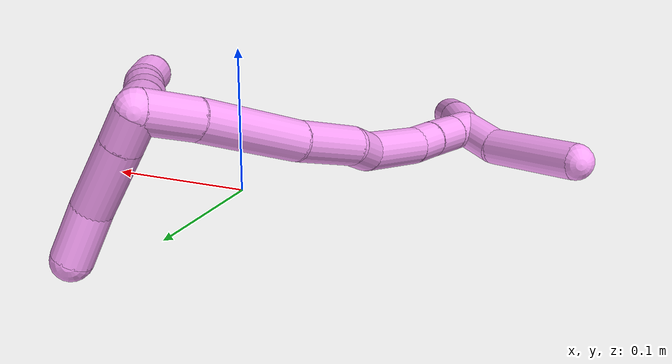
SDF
<sdf version="1.7">
 <world name="default">
  <model name="4">
   <static>0</static>
   <link name="4">
    <collision name="collision-cylinder-e_1_2_8">
     <pose>0.000362 -0.000309 -0.014521 3.12034 0.024953 1.73071</pose>
     <geometry><cylinder><radius>0.0125</radius><length>0.029057</length></cylinder></geometry>
     <surface>
      <friction><ode><mu>1.16</mu><mu2>1.16</mu2><slip1>0</slip1><slip2>0</slip2></ode></friction>
      <contact><ode><kp>1e+06</kp><kd>1</kd><max_vel>0</max_vel><min_depth>0.001</min_depth></ode></contact>
     </surface>
    </collision>
    <visual name="visual-cylinder-e_1_2_8">
     <pose>0.000362 -0.000309 -0.014521 3.12034 0.024953 1.73071</pose>
     <geometry><cylinder><radius>0.0125</radius><length>0.029057</length></cylinder></geometry>
     <material><ambient>1 0.65098 0.996078 1</ambient></material>
    </visual>
    <collision name="collision-cylinder-e_2_8_9">
     <pose>0.000874 0.001246 -0.053738 -3.0663 0.006023 -0.159574</pose>
     <geometry><cylinder><radius>0.0125</radius><length>0.049534</length></cylinder></geometry>
     <surface>
      <friction><ode><mu>1.16</mu><mu2>1.16</mu2><slip1>0</slip1><slip2>0</slip2></ode></friction>
      <contact><ode><kp>1e+06</kp><kd>1</kd><max_vel>0</max_vel><min_depth>0.001</min_depth></ode></contact>
     </surface>
    </collision>
    <visual name="visual-cylinder-e_2_8_9">
     <pose>0.000874 0.001246 -0.053738 -3.0663 0.006023 -0.159574</pose>
     <geometry><cylinder><radius>0.0125</radius><length>0.049534</length></cylinder></geometry>
     <material><ambient>1 0.65098 0.996078 1</ambient></material>
    </visual>
    <collision name="collision-cylinder-e_3_9_10">
     <pose>0.002354 0.003858 -0.089259 -3.07249 0.122022 -2.11182</pose>
     <geometry><cylinder><radius>0.0125</radius><length>0.021862</length></cylinder></geometry>
     <surface>
      <friction><ode><mu>1.16</mu><mu2>1.16</mu2><slip1>0</slip1><slip2>0</slip2></ode></friction>
      <contact><ode><kp>1e+06</kp><kd>1</kd><max_vel>0</max_vel><min_depth>0.001</min_depth></ode></contact>
     </surface>
    </collision>
    <visual name="visual-cylinder-e_3_9_10">
     <pose>0.002354 0.003858 -0.089259 -3.07249 0.122022 -2.11182</pose>
     <geometry><cylinder><radius>0.0125</radius><length>0.021862</length></cylinder></geometry>
     <material><ambient>1 0.65098 0.996078 1</ambient></material>
    </visual>
    <collision name="collision-cylinder-e_4_10_11">
     <pose>0.004439 0.005441 -0.112225 -3.07299 0.061943 -1.46884</pose>
     <geometry><cylinder><radius>0.0125</radius><length>0.02439</length></cylinder></geometry>
     <surface>
      <friction><ode><mu>1.16</mu><mu2>1.16</mu2><slip1>0</slip1><slip2>0</slip2></ode></friction>
      <contact><ode><kp>1e+06</kp><kd>1</kd><max_vel>0</max_vel><min_depth>0.001</min_depth></ode></contact>
     </surface>
    </collision>
    <visual name="visual-cylinder-e_4_10_11">
     <pose>0.004439 0.005441 -0.112225 -3.07299 0.061943 -1.46884</pose>
     <geometry><cylinder><radius>0.0125</radius><length>0.02439</length></cylinder></geometry>
     <material><ambient>1 0.65098 0.996078 1</ambient></material>
    </visual>
    <collision name="collision-cylinder-e_5_11_6">
     <pose>0.006066 0.004128 -0.136731 2.9696 0.069364 0.765265</pose>
     <geometry><cylinder><radius>0.0125</radius><length>0.025157</length></cylinder></geometry>
     <surface>
      <friction><ode><mu>1.16</mu><mu2>1.16</mu2><slip1>0</slip1><slip2>0</slip2></ode></friction>
      <contact><ode><kp>1e+06</kp><kd>1</kd><max_vel>0</max_vel><min_depth>0.001</min_depth></ode></contact>
     </surface>
    </collision>
    <visual name="visual-cylinder-e_5_11_6">
     <pose>0.006066 0.004128 -0.136731 2.9696 0.069364 0.765265</pose>
     <geometry><cylinder><radius>0.0125</radius><length>0.025157</length></cylinder></geometry>
     <material><ambient>1 0.65098 0.996078 1</ambient></material>
    </visual>
    <collision name="collision-cylinder-e_1_2_12">
     <pose>-0.005741 0.008644 -0.003769 -1.98195 -0.54689 0.80925</pose>
     <geometry><cylinder><radius>0.0125</radius><length>0.02208</length></cylinder></geometry>
     <surface>
      <friction><ode><mu>1.16</mu><mu2>1.16</mu2><slip1>0</slip1><slip2>0</slip2></ode></friction>
      <contact><ode><kp>1e+06</kp><kd>1</kd><max_vel>0</max_vel><min_depth>0.001</min_depth></ode></contact>
     </surface>
    </collision>
    <visual name="visual-cylinder-e_1_2_12">
     <pose>-0.005741 0.008644 -0.003769 -1.98195 -0.54689 0.80925</pose>
     <geometry><cylinder><radius>0.0125</radius><length>0.02208</length></cylinder></geometry>
     <material><ambient>1 0.65098 0.996078 1</ambient></material>
    </visual>
    <collision name="collision-cylinder-e_2_12_13">
     <pose>-0.022867 0.034896 -0.015347 -1.98822 -0.53378 0.79585</pose>
     <geometry><cylinder><radius>0.0125</radius><length>0.044751</length></cylinder></geometry>
     <surface>
      <friction><ode><mu>1.16</mu><mu2>1.16</mu2><slip1>0</slip1><slip2>0</slip2></ode></friction>
      <contact><ode><kp>1e+06</kp><kd>1</kd><max_vel>0</max_vel><min_depth>0.001</min_depth></ode></contact>
     </surface>
    </collision>
    <visual name="visual-cylinder-e_2_12_13">
     <pose>-0.022867 0.034896 -0.015347 -1.98822 -0.53378 0.79585</pose>
     <geometry><cylinder><radius>0.0125</radius><length>0.044751</length></cylinder></geometry>
     <material><ambient>1 0.65098 0.996078 1</ambient></material>
    </visual>
    <collision name="collision-cylinder-e_3_13_5">
     <pose>-0.043985 0.065704 -0.025625 -1.75573 -0.62729 0.744846</pose>
     <geometry><cylinder><radius>0.0125</radius><length>0.03317</length></cylinder></geometry>
     <surface>
      <friction><ode><mu>1.16</mu><mu2>1.16</mu2><slip1>0</slip1><slip2>0</slip2></ode></friction>
      <contact><ode><kp>1e+06</kp><kd>1</kd><max_vel>0</max_vel><min_depth>0.001</min_depth></ode></contact>
     </surface>
    </collision>
    <visual name="visual-cylinder-e_3_13_5">
     <pose>-0.043985 0.065704 -0.025625 -1.75573 -0.62729 0.744846</pose>
     <geometry><cylinder><radius>0.0125</radius><length>0.03317</length></cylinder></geometry>
     <material><ambient>1 0.65098 0.996078 1</ambient></material>
    </visual>
    <collision name="collision-cylinder-e_1_2_14">
     <pose>-0.010773 -0.01079 -0.009523 2.2939 -0.642571 -1.27108</pose>
     <geometry><cylinder><radius>0.0125</radius><length>0.035954</length></cylinder></geometry>
     <surface>
      <friction><ode><mu>1.16</mu><mu2>1.16</mu2><slip1>0</slip1><slip2>0</slip2></ode></friction>
      <contact><ode><kp>1e+06</kp><kd>1</kd><max_vel>0</max_vel><min_depth>0.001</min_depth></ode></contact>
     </surface>
    </collision>
    <visual name="visual-cylinder-e_1_2_14">
     <pose>-0.010773 -0.01079 -0.009523 2.2939 -0.642571 -1.27108</pose>
     <geometry><cylinder><radius>0.0125</radius><length>0.035954</length></cylinder></geometry>
     <material><ambient>1 0.65098 0.996078 1</ambient></material>
    </visual>
    <collision name="collision-cylinder-e_2_14_15">
     <pose>-0.04415 -0.041049 -0.039579 2.38279 -0.674059 -1.44197</pose>
     <geometry><cylinder><radius>0.0125</radius><length>0.072432</length></cylinder></geometry>
     <surface>
      <friction><ode><mu>1.16</mu><mu2>1.16</mu2><slip1>0</slip1><slip2>0</slip2></ode></friction>
      <contact><ode><kp>1e+06</kp><kd>1</kd><max_vel>0</max_vel><min_depth>0.001</min_depth></ode></contact>
     </surface>
    </collision>
    <visual name="visual-cylinder-e_2_14_15">
     <pose>-0.04415 -0.041049 -0.039579 2.38279 -0.674059 -1.44197</pose>
     <geometry><cylinder><radius>0.0125</radius><length>0.072432</length></cylinder></geometry>
     <material><ambient>1 0.65098 0.996078 1</ambient></material>
    </visual>
    <collision name="collision-cylinder-e_3_15_16">
     <pose>-0.079457 -0.073481 -0.075925 2.45493 -0.55587 -1.34718</pose>
     <geometry><cylinder><radius>0.0125</radius><length>0.048144</length></cylinder></geometry>
     <surface>
      <friction><ode><mu>1.16</mu><mu2>1.16</mu2><slip1>0</slip1><slip2>0</slip2></ode></friction>
      <contact><ode><kp>1e+06</kp><kd>1</kd><max_vel>0</max_vel><min_depth>0.001</min_depth></ode></contact>
     </surface>
    </collision>
    <visual name="visual-cylinder-e_3_15_16">
     <pose>-0.079457 -0.073481 -0.075925 2.45493 -0.55587 -1.34718</pose>
     <geometry><cylinder><radius>0.0125</radius><length>0.048144</length></cylinder></geometry>
     <material><ambient>1 0.65098 0.996078 1</ambient></material>
    </visual>
    <collision name="collision-cylinder-e_4_16_17">
     <pose>-0.098207 -0.089632 -0.10086 2.80533 -0.559232 -2.07385</pose>
     <geometry><cylinder><radius>0.0125</radius><length>0.0228</length></cylinder></geometry>
     <surface>
      <friction><ode><mu>1.16</mu><mu2>1.16</mu2><slip1>0</slip1><slip2>0</slip2></ode></friction>
      <contact><ode><kp>1e+06</kp><kd>1</kd><max_vel>0</max_vel><min_depth>0.001</min_depth></ode></contact>
     </surface>
    </collision>
    <visual name="visual-cylinder-e_4_16_17">
     <pose>-0.098207 -0.089632 -0.10086 2.80533 -0.559232 -2.07385</pose>
     <geometry><cylinder><radius>0.0125</radius><length>0.0228</length></cylinder></geometry>
     <material><ambient>1 0.65098 0.996078 1</ambient></material>
    </visual>
    <collision name="collision-cylinder-e_5_17_18">
     <pose>-0.114618 -0.10785 -0.128084 2.44866 -0.414865 -1.05557</pose>
     <geometry><cylinder><radius>0.0125</radius><length>0.051419</length></cylinder></geometry>
     <surface>
      <friction><ode><mu>1.16</mu><mu2>1.16</mu2><slip1>0</slip1><slip2>0</slip2></ode></friction>
      <contact><ode><kp>1e+06</kp><kd>1</kd><max_vel>0</max_vel><min_depth>0.001</min_depth></ode></contact>
     </surface>
    </collision>
    <visual name="visual-cylinder-e_5_17_18">
     <pose>-0.114618 -0.10785 -0.128084 2.44866 -0.414865 -1.05557</pose>
     <geometry><cylinder><radius>0.0125</radius><length>0.051419</length></cylinder></geometry>
     <material><ambient>1 0.65098 0.996078 1</ambient></material>
    </visual>
    <collision name="collision-cylinder-e_6_18_19">
     <pose>-0.127895 -0.129574 -0.153199 2.37945 -0.292122 -0.703775</pose>
     <geometry><cylinder><radius>0.0125</radius><length>0.020245</length></cylinder></geometry>
     <surface>
      <friction><ode><mu>1.16</mu><mu2>1.16</mu2><slip1>0</slip1><slip2>0</slip2></ode></friction>
      <contact><ode><kp>1e+06</kp><kd>1</kd><max_vel>0</max_vel><min_depth>0.001</min_depth></ode></contact>
     </surface>
    </collision>
    <visual name="visual-cylinder-e_6_18_19">
     <pose>-0.127895 -0.129574 -0.153199 2.37945 -0.292122 -0.703775</pose>
     <geometry><cylinder><radius>0.0125</radius><length>0.020245</length></cylinder></geometry>
     <material><ambient>1 0.65098 0.996078 1</ambient></material>
    </visual>
    <collision name="collision-cylinder-e_7_19_20">
     <pose>-0.135075 -0.144628 -0.170486 2.45856 -0.311457 -0.831856</pose>
     <geometry><cylinder><radius>0.0125</radius><length>0.027834</length></cylinder></geometry>
     <surface>
      <friction><ode><mu>1.16</mu><mu2>1.16</mu2><slip1>0</slip1><slip2>0</slip2></ode></friction>
      <contact><ode><kp>1e+06</kp><kd>1</kd><max_vel>0</max_vel><min_depth>0.001</min_depth></ode></contact>
     </surface>
    </collision>
    <visual name="visual-cylinder-e_7_19_20">
     <pose>-0.135075 -0.144628 -0.170486 2.45856 -0.311457 -0.831856</pose>
     <geometry><cylinder><radius>0.0125</radius><length>0.027834</length></cylinder></geometry>
     <material><ambient>1 0.65098 0.996078 1</ambient></material>
    </visual>
    <collision name="collision-cylinder-e_8_20_1">
     <pose>-0.142542 -0.159253 -0.188674 2.47197 -0.307232 -0.837456</pose>
     <geometry><cylinder><radius>0.0125</radius><length>0.021173</length></cylinder></geometry>
     <surface>
      <friction><ode><mu>1.16</mu><mu2>1.16</mu2><slip1>0</slip1><slip2>0</slip2></ode></friction>
      <contact><ode><kp>1e+06</kp><kd>1</kd><max_vel>0</max_vel><min_depth>0.001</min_depth></ode></contact>
     </surface>
    </collision>
    <visual name="visual-cylinder-e_8_20_1">
     <pose>-0.142542 -0.159253 -0.188674 2.47197 -0.307232 -0.837456</pose>
     <geometry><cylinder><radius>0.0125</radius><length>0.021173</length></cylinder></geometry>
     <material><ambient>1 0.65098 0.996078 1</ambient></material>
    </visual>
    <collision name="collision-cylinder-e_1_1_21">
     <pose>-0.14438 -0.166542 -0.212438 3.07694 0.085598 1.84803</pose>
     <geometry><cylinder><radius>0.0125</radius><length>0.031887</length></cylinder></geometry>
     <surface>
      <friction><ode><mu>1.16</mu><mu2>1.16</mu2><slip1>0</slip1><slip2>0</slip2></ode></friction>
      <contact><ode><kp>1e+06</kp><kd>1</kd><max_vel>0</max_vel><min_depth>0.001</min_depth></ode></contact>
     </surface>
    </collision>
    <visual name="visual-cylinder-e_1_1_21">
     <pose>-0.14438 -0.166542 -0.212438 3.07694 0.085598 1.84803</pose>
     <geometry><cylinder><radius>0.0125</radius><length>0.031887</length></cylinder></geometry>
     <material><ambient>1 0.65098 0.996078 1</ambient></material>
    </visual>
    <collision name="collision-cylinder-e_2_21_22">
     <pose>-0.143176 -0.167353 -0.240045 -3.12325 -0.013484 1.26763</pose>
     <geometry><cylinder><radius>0.0125</radius><length>0.023517</length></cylinder></geometry>
     <surface>
      <friction><ode><mu>1.16</mu><mu2>1.16</mu2><slip1>0</slip1><slip2>0</slip2></ode></friction>
      <contact><ode><kp>1e+06</kp><kd>1</kd><max_vel>0</max_vel><min_depth>0.001</min_depth></ode></contact>
     </surface>
    </collision>
    <visual name="visual-cylinder-e_2_21_22">
     <pose>-0.143176 -0.167353 -0.240045 -3.12325 -0.013484 1.26763</pose>
     <geometry><cylinder><radius>0.0125</radius><length>0.023517</length></cylinder></geometry>
     <material><ambient>1 0.65098 0.996078 1</ambient></material>
    </visual>
    <collision name="collision-cylinder-e_3_22_23">
     <pose>-0.146308 -0.167925 -0.261904 3.06376 -0.285446 -2.61239</pose>
     <geometry><cylinder><radius>0.0125</radius><length>0.021123</length></cylinder></geometry>
     <surface>
      <friction><ode><mu>1.16</mu><mu2>1.16</mu2><slip1>0</slip1><slip2>0</slip2></ode></friction>
      <contact><ode><kp>1e+06</kp><kd>1</kd><max_vel>0</max_vel><min_depth>0.001</min_depth></ode></contact>
     </surface>
    </collision>
    <visual name="visual-cylinder-e_3_22_23">
     <pose>-0.146308 -0.167925 -0.261904 3.06376 -0.285446 -2.61239</pose>
     <geometry><cylinder><radius>0.0125</radius><length>0.021123</length></cylinder></geometry>
     <material><ambient>1 0.65098 0.996078 1</ambient></material>
    </visual>
    <collision name="collision-cylinder-e_4_23_4">
     <pose>-0.153286 -0.170885 -0.282824 2.94345 -0.348076 -2.11249</pose>
     <geometry><cylinder><radius>0.0125</radius><length>0.023473</length></cylinder></geometry>
     <surface>
      <friction><ode><mu>1.16</mu><mu2>1.16</mu2><slip1>0</slip1><slip2>0</slip2></ode></friction>
      <contact><ode><kp>1e+06</kp><kd>1</kd><max_vel>0</max_vel><min_depth>0.001</min_depth></ode></contact>
     </surface>
    </collision>
    <visual name="visual-cylinder-e_4_23_4">
     <pose>-0.153286 -0.170885 -0.282824 2.94345 -0.348076 -2.11249</pose>
     <geometry><cylinder><radius>0.0125</radius><length>0.023473</length></cylinder></geometry>
     <material><ambient>1 0.65098 0.996078 1</ambient></material>
    </visual>
    <collision name="collision-cylinder-e_1_1_24">
     <pose>-0.153718 -0.169881 -0.183565 0.323471 -0.526078 -0.087815</pose>
     <geometry><cylinder><radius>0.0125</radius><length>0.031761</length></cylinder></geometry>
     <surface>
      <friction><ode><mu>1.16</mu><mu2>1.16</mu2><slip1>0</slip1><slip2>0</slip2></ode></friction>
      <contact><ode><kp>1e+06</kp><kd>1</kd><max_vel>0</max_vel><min_depth>0.001</min_depth></ode></contact>
     </surface>
    </collision>
    <visual name="visual-cylinder-e_1_1_24">
     <pose>-0.153718 -0.169881 -0.183565 0.323471 -0.526078 -0.087815</pose>
     <geometry><cylinder><radius>0.0125</radius><length>0.031761</length></cylinder></geometry>
     <material><ambient>1 0.65098 0.996078 1</ambient></material>
    </visual>
    <collision name="collision-cylinder-e_2_24_3">
     <pose>-0.173046 -0.191679 -0.143501 0.572595 -0.33925 -0.100754</pose>
     <geometry><cylinder><radius>0.0125</radius><length>0.068239</length></cylinder></geometry>
     <surface>
      <friction><ode><mu>1.16</mu><mu2>1.16</mu2><slip1>0</slip1><slip2>0</slip2></ode></friction>
      <contact><ode><kp>1e+06</kp><kd>1</kd><max_vel>0</max_vel><min_depth>0.001</min_depth></ode></contact>
     </surface>
    </collision>
    <visual name="visual-cylinder-e_2_24_3">
     <pose>-0.173046 -0.191679 -0.143501 0.572595 -0.33925 -0.100754</pose>
     <geometry><cylinder><radius>0.0125</radius><length>0.068239</length></cylinder></geometry>
     <material><ambient>1 0.65098 0.996078 1</ambient></material>
    </visual>
    <collision name="collision-sphere-3">
     <pose>-0.184401 -0.209112 -0.116458 0 -0 0</pose>
     <geometry><sphere><radius>0.0125</radius></sphere></geometry>
     <surface>
      <friction><ode><mu>1.16</mu><mu2>1.16</mu2><slip1>0</slip1><slip2>0</slip2></ode></friction>
      <contact><ode><kp>1e+06</kp><kd>1</kd><max_vel>0</max_vel><min_depth>0.001</min_depth></ode></contact>
     </surface>
    </collision>
    <visual name="visual-sphere-3">
     <pose>-0.184401 -0.209112 -0.116458 0 -0 0</pose>
     <geometry><sphere><radius>0.0125</radius></sphere></geometry>
     <material><ambient>1 0.65098 0.996078 1</ambient></material>
    </visual>
    <collision name="collision-sphere-24">
     <pose>-0.161692 -0.174246 -0.170544 0 -0 0</pose>
     <geometry><sphere><radius>0.0125</radius></sphere></geometry>
     <surface>
      <friction><ode><mu>1.16</mu><mu2>1.16</mu2><slip1>0</slip1><slip2>0</slip2></ode></friction>
      <contact><ode><kp>1e+06</kp><kd>1</kd><max_vel>0</max_vel><min_depth>0.001</min_depth></ode></contact>
     </surface>
    </collision>
    <visual name="visual-sphere-24">
     <pose>-0.161692 -0.174246 -0.170544 0 -0 0</pose>
     <geometry><sphere><radius>0.0125</radius></sphere></geometry>
     <material><ambient>1 0.65098 0.996078 1</ambient></material>
    </visual>
    <collision name="collision-sphere-4">
     <pose>-0.157289 -0.173057 -0.293641 0 -0 0</pose>
     <geometry><sphere><radius>0.0125</radius></sphere></geometry>
     <surface>
      <friction><ode><mu>1.16</mu><mu2>1.16</mu2><slip1>0</slip1><slip2>0</slip2></ode></friction>
      <contact><ode><kp>1e+06</kp><kd>1</kd><max_vel>0</max_vel><min_depth>0.001</min_depth></ode></contact>
     </surface>
    </collision>
    <visual name="visual-sphere-4">
     <pose>-0.157289 -0.173057 -0.293641 0 -0 0</pose>
     <geometry><sphere><radius>0.0125</radius></sphere></geometry>
     <material><ambient>1 0.65098 0.996078 1</ambient></material>
    </visual>
    <collision name="collision-sphere-23">
     <pose>-0.149282 -0.168713 -0.272007 0 -0 0</pose>
     <geometry><sphere><radius>0.0125</radius></sphere></geometry>
     <surface>
      <friction><ode><mu>1.16</mu><mu2>1.16</mu2><slip1>0</slip1><slip2>0</slip2></ode></friction>
      <contact><ode><kp>1e+06</kp><kd>1</kd><max_vel>0</max_vel><min_depth>0.001</min_depth></ode></contact>
     </surface>
    </collision>
    <visual name="visual-sphere-23">
     <pose>-0.149282 -0.168713 -0.272007 0 -0 0</pose>
     <geometry><sphere><radius>0.0125</radius></sphere></geometry>
     <material><ambient>1 0.65098 0.996078 1</ambient></material>
    </visual>
    <collision name="collision-sphere-22">
     <pose>-0.143334 -0.167137 -0.2518 0 -0 0</pose>
     <geometry><sphere><radius>0.0125</radius></sphere></geometry>
     <surface>
      <friction><ode><mu>1.16</mu><mu2>1.16</mu2><slip1>0</slip1><slip2>0</slip2></ode></friction>
      <contact><ode><kp>1e+06</kp><kd>1</kd><max_vel>0</max_vel><min_depth>0.001</min_depth></ode></contact>
     </surface>
    </collision>
    <visual name="visual-sphere-22">
     <pose>-0.143334 -0.167137 -0.2518 0 -0 0</pose>
     <geometry><sphere><radius>0.0125</radius></sphere></geometry>
     <material><ambient>1 0.65098 0.996078 1</ambient></material>
    </visual>
    <collision name="collision-sphere-21">
     <pose>-0.143017 -0.167569 -0.22829 0 -0 0</pose>
     <geometry><sphere><radius>0.0125</radius></sphere></geometry>
     <surface>
      <friction><ode><mu>1.16</mu><mu2>1.16</mu2><slip1>0</slip1><slip2>0</slip2></ode></friction>
      <contact><ode><kp>1e+06</kp><kd>1</kd><max_vel>0</max_vel><min_depth>0.001</min_depth></ode></contact>
     </surface>
    </collision>
    <visual name="visual-sphere-21">
     <pose>-0.143017 -0.167569 -0.22829 0 -0 0</pose>
     <geometry><sphere><radius>0.0125</radius></sphere></geometry>
     <material><ambient>1 0.65098 0.996078 1</ambient></material>
    </visual>
    <collision name="collision-sphere-1">
     <pose>-0.145743 -0.165516 -0.196586 0 -0 0</pose>
     <geometry><sphere><radius>0.0125</radius></sphere></geometry>
     <surface>
      <friction><ode><mu>1.16</mu><mu2>1.16</mu2><slip1>0</slip1><slip2>0</slip2></ode></friction>
      <contact><ode><kp>1e+06</kp><kd>1</kd><max_vel>0</max_vel><min_depth>0.001</min_depth></ode></contact>
     </surface>
    </collision>
    <visual name="visual-sphere-1">
     <pose>-0.145743 -0.165516 -0.196586 0 -0 0</pose>
     <geometry><sphere><radius>0.0125</radius></sphere></geometry>
     <material><ambient>1 0.65098 0.996078 1</ambient></material>
    </visual>
    <collision name="collision-sphere-6">
     <pose>0.006938 0.00198 -0.149094 0 -0 0</pose>
     <geometry><sphere><radius>0.0125</radius></sphere></geometry>
     <surface>
      <friction><ode><mu>1.16</mu><mu2>1.16</mu2><slip1>0</slip1><slip2>0</slip2></ode></friction>
      <contact><ode><kp>1e+06</kp><kd>1</kd><max_vel>0</max_vel><min_depth>0.001</min_depth></ode></contact>
     </surface>
    </collision>
    <visual name="visual-sphere-6">
     <pose>0.006938 0.00198 -0.149094 0 -0 0</pose>
     <geometry><sphere><radius>0.0125</radius></sphere></geometry>
     <material><ambient>1 0.65098 0.996078 1</ambient></material>
    </visual>
    <collision name="collision-sphere-11">
     <pose>0.005194 0.006275 -0.124368 0 -0 0</pose>
     <geometry><sphere><radius>0.0125</radius></sphere></geometry>
     <surface>
      <friction><ode><mu>1.16</mu><mu2>1.16</mu2><slip1>0</slip1><slip2>0</slip2></ode></friction>
      <contact><ode><kp>1e+06</kp><kd>1</kd><max_vel>0</max_vel><min_depth>0.001</min_depth></ode></contact>
     </surface>
    </collision>
    <visual name="visual-sphere-11">
     <pose>0.005194 0.006275 -0.124368 0 -0 0</pose>
     <geometry><sphere><radius>0.0125</radius></sphere></geometry>
     <material><ambient>1 0.65098 0.996078 1</ambient></material>
    </visual>
    <collision name="collision-sphere-10">
     <pose>0.003684 0.004607 -0.100083 0 -0 0</pose>
     <geometry><sphere><radius>0.0125</radius></sphere></geometry>
     <surface>
      <friction><ode><mu>1.16</mu><mu2>1.16</mu2><slip1>0</slip1><slip2>0</slip2></ode></friction>
      <contact><ode><kp>1e+06</kp><kd>1</kd><max_vel>0</max_vel><min_depth>0.001</min_depth></ode></contact>
     </surface>
    </collision>
    <visual name="visual-sphere-10">
     <pose>0.003684 0.004607 -0.100083 0 -0 0</pose>
     <geometry><sphere><radius>0.0125</radius></sphere></geometry>
     <material><ambient>1 0.65098 0.996078 1</ambient></material>
    </visual>
    <collision name="collision-sphere-9">
     <pose>0.001023 0.003109 -0.078435 0 -0 0</pose>
     <geometry><sphere><radius>0.0125</radius></sphere></geometry>
     <surface>
      <friction><ode><mu>1.16</mu><mu2>1.16</mu2><slip1>0</slip1><slip2>0</slip2></ode></friction>
      <contact><ode><kp>1e+06</kp><kd>1</kd><max_vel>0</max_vel><min_depth>0.001</min_depth></ode></contact>
     </surface>
    </collision>
    <visual name="visual-sphere-9">
     <pose>0.001023 0.003109 -0.078435 0 -0 0</pose>
     <geometry><sphere><radius>0.0125</radius></sphere></geometry>
     <material><ambient>1 0.65098 0.996078 1</ambient></material>
    </visual>
    <collision name="collision-sphere-2">
     <geometry><sphere><radius>0.0125</radius></sphere></geometry>
     <surface>
      <friction><ode><mu>1.16</mu><mu2>1.16</mu2><slip1>0</slip1><slip2>0</slip2></ode></friction>
      <contact><ode><kp>1e+06</kp><kd>1</kd><max_vel>0</max_vel><min_depth>0.001</min_depth></ode></contact>
     </surface>
    </collision>
    <visual name="visual-sphere-2">
     <geometry><sphere><radius>0.0125</radius></sphere></geometry>
     <material><ambient>1 0.65098 0.996078 1</ambient></material>
    </visual>
    <collision name="collision-sphere-19">
     <pose>-0.130811 -0.136267 -0.160211 0 -0 0</pose>
     <geometry><sphere><radius>0.0125</radius></sphere></geometry>
     <surface>
      <friction><ode><mu>1.16</mu><mu2>1.16</mu2><slip1>0</slip1><slip2>0</slip2></ode></friction>
      <contact><ode><kp>1e+06</kp><kd>1</kd><max_vel>0</max_vel><min_depth>0.001</min_depth></ode></contact>
     </surface>
    </collision>
    <visual name="visual-sphere-19">
     <pose>-0.130811 -0.136267 -0.160211 0 -0 0</pose>
     <geometry><sphere><radius>0.0125</radius></sphere></geometry>
     <material><ambient>1 0.65098 0.996078 1</ambient></material>
    </visual>
    <collision name="collision-sphere-8">
     <pose>0.000725 -0.000617 -0.029041 0 -0 0</pose>
     <geometry><sphere><radius>0.0125</radius></sphere></geometry>
     <surface>
      <friction><ode><mu>1.16</mu><mu2>1.16</mu2><slip1>0</slip1><slip2>0</slip2></ode></friction>
      <contact><ode><kp>1e+06</kp><kd>1</kd><max_vel>0</max_vel><min_depth>0.001</min_depth></ode></contact>
     </surface>
    </collision>
    <visual name="visual-sphere-8">
     <pose>0.000725 -0.000617 -0.029041 0 -0 0</pose>
     <geometry><sphere><radius>0.0125</radius></sphere></geometry>
     <material><ambient>1 0.65098 0.996078 1</ambient></material>
    </visual>
    <collision name="collision-sphere-12">
     <pose>-0.011482 0.017288 -0.007538 0 -0 0</pose>
     <geometry><sphere><radius>0.0125</radius></sphere></geometry>
     <surface>
      <friction><ode><mu>1.16</mu><mu2>1.16</mu2><slip1>0</slip1><slip2>0</slip2></ode></friction>
      <contact><ode><kp>1e+06</kp><kd>1</kd><max_vel>0</max_vel><min_depth>0.001</min_depth></ode></contact>
     </surface>
    </collision>
    <visual name="visual-sphere-12">
     <pose>-0.011482 0.017288 -0.007538 0 -0 0</pose>
     <geometry><sphere><radius>0.0125</radius></sphere></geometry>
     <material><ambient>1 0.65098 0.996078 1</ambient></material>
    </visual>
    <collision name="collision-sphere-13">
     <pose>-0.034251 0.052505 -0.023156 0 -0 0</pose>
     <geometry><sphere><radius>0.0125</radius></sphere></geometry>
     <surface>
      <friction><ode><mu>1.16</mu><mu2>1.16</mu2><slip1>0</slip1><slip2>0</slip2></ode></friction>
      <contact><ode><kp>1e+06</kp><kd>1</kd><max_vel>0</max_vel><min_depth>0.001</min_depth></ode></contact>
     </surface>
    </collision>
    <visual name="visual-sphere-13">
     <pose>-0.034251 0.052505 -0.023156 0 -0 0</pose>
     <geometry><sphere><radius>0.0125</radius></sphere></geometry>
     <material><ambient>1 0.65098 0.996078 1</ambient></material>
    </visual>
    <collision name="collision-sphere-5">
     <pose>-0.05372 0.078902 -0.028094 0 -0 0</pose>
     <geometry><sphere><radius>0.0125</radius></sphere></geometry>
     <surface>
      <friction><ode><mu>1.16</mu><mu2>1.16</mu2><slip1>0</slip1><slip2>0</slip2></ode></friction>
      <contact><ode><kp>1e+06</kp><kd>1</kd><max_vel>0</max_vel><min_depth>0.001</min_depth></ode></contact>
     </surface>
    </collision>
    <visual name="visual-sphere-5">
     <pose>-0.05372 0.078902 -0.028094 0 -0 0</pose>
     <geometry><sphere><radius>0.0125</radius></sphere></geometry>
     <material><ambient>1 0.65098 0.996078 1</ambient></material>
    </visual>
    <collision name="collision-sphere-14">
     <pose>-0.021545 -0.02158 -0.019046 0 -0 0</pose>
     <geometry><sphere><radius>0.0125</radius></sphere></geometry>
     <surface>
      <friction><ode><mu>1.16</mu><mu2>1.16</mu2><slip1>0</slip1><slip2>0</slip2></ode></friction>
      <contact><ode><kp>1e+06</kp><kd>1</kd><max_vel>0</max_vel><min_depth>0.001</min_depth></ode></contact>
     </surface>
    </collision>
    <visual name="visual-sphere-14">
     <pose>-0.021545 -0.02158 -0.019046 0 -0 0</pose>
     <geometry><sphere><radius>0.0125</radius></sphere></geometry>
     <material><ambient>1 0.65098 0.996078 1</ambient></material>
    </visual>
    <collision name="collision-sphere-15">
     <pose>-0.066754 -0.060517 -0.060111 0 -0 0</pose>
     <geometry><sphere><radius>0.0125</radius></sphere></geometry>
     <surface>
      <friction><ode><mu>1.16</mu><mu2>1.16</mu2><slip1>0</slip1><slip2>0</slip2></ode></friction>
      <contact><ode><kp>1e+06</kp><kd>1</kd><max_vel>0</max_vel><min_depth>0.001</min_depth></ode></contact>
     </surface>
    </collision>
    <visual name="visual-sphere-15">
     <pose>-0.066754 -0.060517 -0.060111 0 -0 0</pose>
     <geometry><sphere><radius>0.0125</radius></sphere></geometry>
     <material><ambient>1 0.65098 0.996078 1</ambient></material>
    </visual>
    <collision name="collision-sphere-16">
     <pose>-0.092159 -0.086444 -0.091738 0 -0 0</pose>
     <geometry><sphere><radius>0.0125</radius></sphere></geometry>
     <surface>
      <friction><ode><mu>1.16</mu><mu2>1.16</mu2><slip1>0</slip1><slip2>0</slip2></ode></friction>
      <contact><ode><kp>1e+06</kp><kd>1</kd><max_vel>0</max_vel><min_depth>0.001</min_depth></ode></contact>
     </surface>
    </collision>
    <visual name="visual-sphere-16">
     <pose>-0.092159 -0.086444 -0.091738 0 -0 0</pose>
     <geometry><sphere><radius>0.0125</radius></sphere></geometry>
     <material><ambient>1 0.65098 0.996078 1</ambient></material>
    </visual>
    <collision name="collision-sphere-17">
     <pose>-0.104255 -0.092821 -0.109982 0 -0 0</pose>
     <geometry><sphere><radius>0.0125</radius></sphere></geometry>
     <surface>
      <friction><ode><mu>1.16</mu><mu2>1.16</mu2><slip1>0</slip1><slip2>0</slip2></ode></friction>
      <contact><ode><kp>1e+06</kp><kd>1</kd><max_vel>0</max_vel><min_depth>0.001</min_depth></ode></contact>
     </surface>
    </collision>
    <visual name="visual-sphere-17">
     <pose>-0.104255 -0.092821 -0.109982 0 -0 0</pose>
     <geometry><sphere><radius>0.0125</radius></sphere></geometry>
     <material><ambient>1 0.65098 0.996078 1</ambient></material>
    </visual>
    <collision name="collision-sphere-18">
     <pose>-0.12498 -0.12288 -0.146187 0 -0 0</pose>
     <geometry><sphere><radius>0.0125</radius></sphere></geometry>
     <surface>
      <friction><ode><mu>1.16</mu><mu2>1.16</mu2><slip1>0</slip1><slip2>0</slip2></ode></friction>
      <contact><ode><kp>1e+06</kp><kd>1</kd><max_vel>0</max_vel><min_depth>0.001</min_depth></ode></contact>
     </surface>
    </collision>
    <visual name="visual-sphere-18">
     <pose>-0.12498 -0.12288 -0.146187 0 -0 0</pose>
     <geometry><sphere><radius>0.0125</radius></sphere></geometry>
     <material><ambient>1 0.65098 0.996078 1</ambient></material>
    </visual>
    <collision name="collision-sphere-20">
     <pose>-0.13934 -0.152989 -0.180762 0 -0 0</pose>
     <geometry><sphere><radius>0.0125</radius></sphere></geometry>
     <surface>
      <friction><ode><mu>1.16</mu><mu2>1.16</mu2><slip1>0</slip1><slip2>0</slip2></ode></friction>
      <contact><ode><kp>1e+06</kp><kd>1</kd><max_vel>0</max_vel><min_depth>0.001</min_depth></ode></contact>
     </surface>
    </collision>
    <visual name="visual-sphere-20">
     <pose>-0.13934 -0.152989 -0.180762 0 -0 0</pose>
     <geometry><sphere><radius>0.0125</radius></sphere></geometry>
     <material><ambient>1 0.65098 0.996078 1</ambient></material>
    </visual>
    <inertial>
     <pose>-0.078004 -0.073978 -0.107515 0 -0 0</pose>
     <mass>0.75</mass>
     <inertia><ixx>-1e-06</ixx><ixy>0</ixy><ixz>0</ixz><iyy>-2.6e-05</iyy><iyz>0</iyz><izz>7.2e-05</izz></inertia>
    </inertial>
   </link>
   <pose>-0.02839 0.160247 0.100185 -1.31117 -1.03719 0.274778</pose>
  </model>
 </world>
</sdf>
